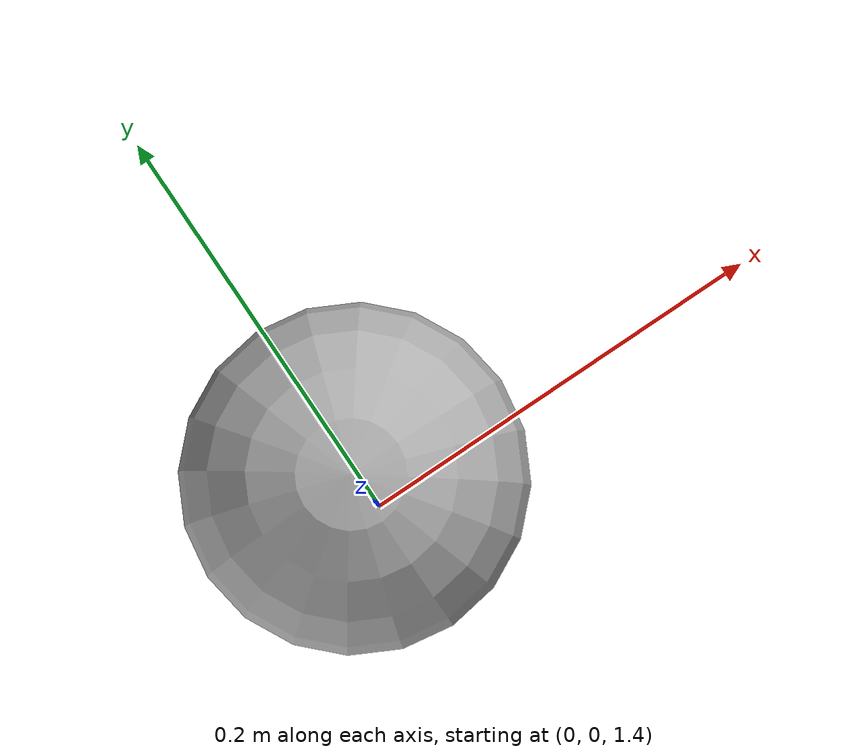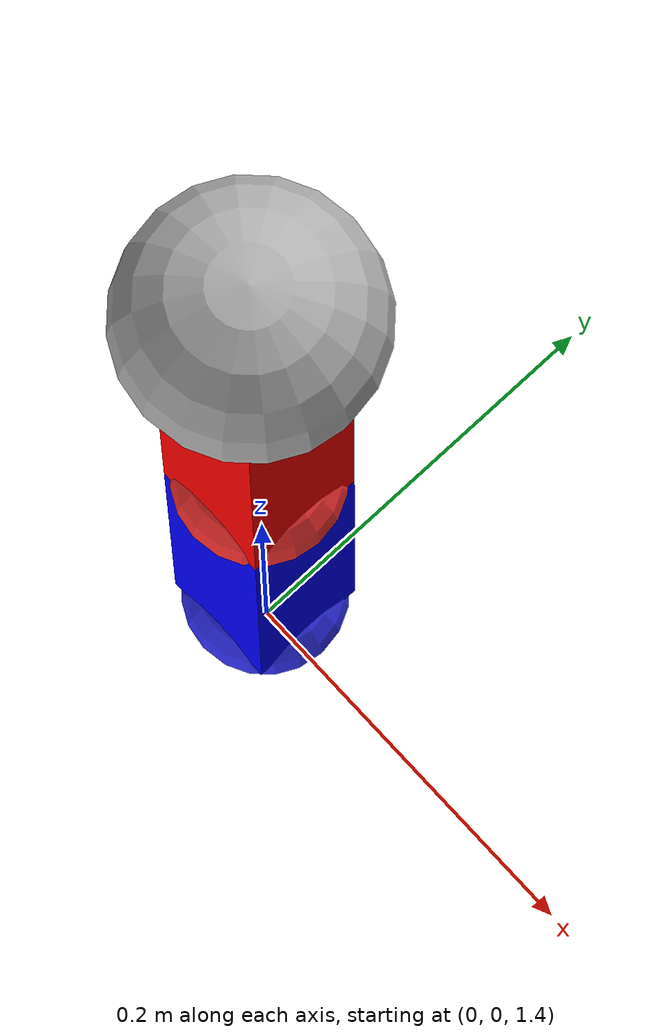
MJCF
<mujoco model="pendulum">
  <compiler angle="degree"/>

  <option integrator="RK4" timestep="0.001"/>

  <worldbody>
    <light diffuse=".8 .8 .8" dir="0 -1 -.5" pos="0 2 2"/>

    <!-- base 固定，不放 joint -->
    <body name="base" pos="0 0 2">
      <geom type="sphere" size="0.06" rgba=".7 .7 .7 1"/>

      <!-- upper_arm 是子 body，joint 放这里：upper_arm 绕 base 转动 -->
      <body name="upper_arm" pos="0 0 0">
        <joint name="shoulder" type="hinge" axis="0 1 0"/>
        <geom type="box" size="0.03 0.03 0.15" pos="0 0 -0.15" rgba="1 0 0 1"/>
        <geom type="sphere" size="0.04" pos="0 0 -0.3" rgba="1 .2 .2 1"/>

        <!-- forearm 是 upper_arm 的子 body -->
        <body name="forearm" pos="0 0 -0.3">
          <joint name="elbow" type="hinge" axis="0 1 0"/>
          <geom type="box" size="0.03 0.03 0.12" pos="0 0 -0.12" rgba="0 0 1 1"/>
          <geom type="sphere" size="0.04" pos="0 0 -0.25" rgba=".2 .2 1 1"/>
        </body>
      </body>
    </body>
  </worldbody>
</mujoco>
